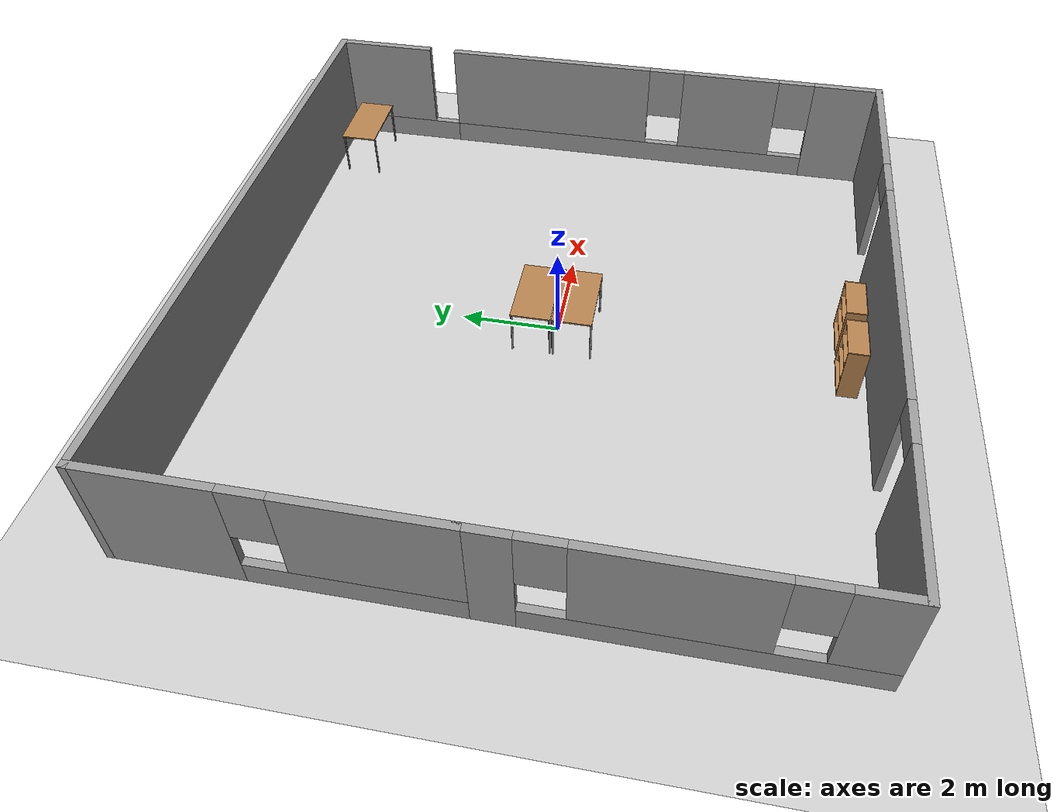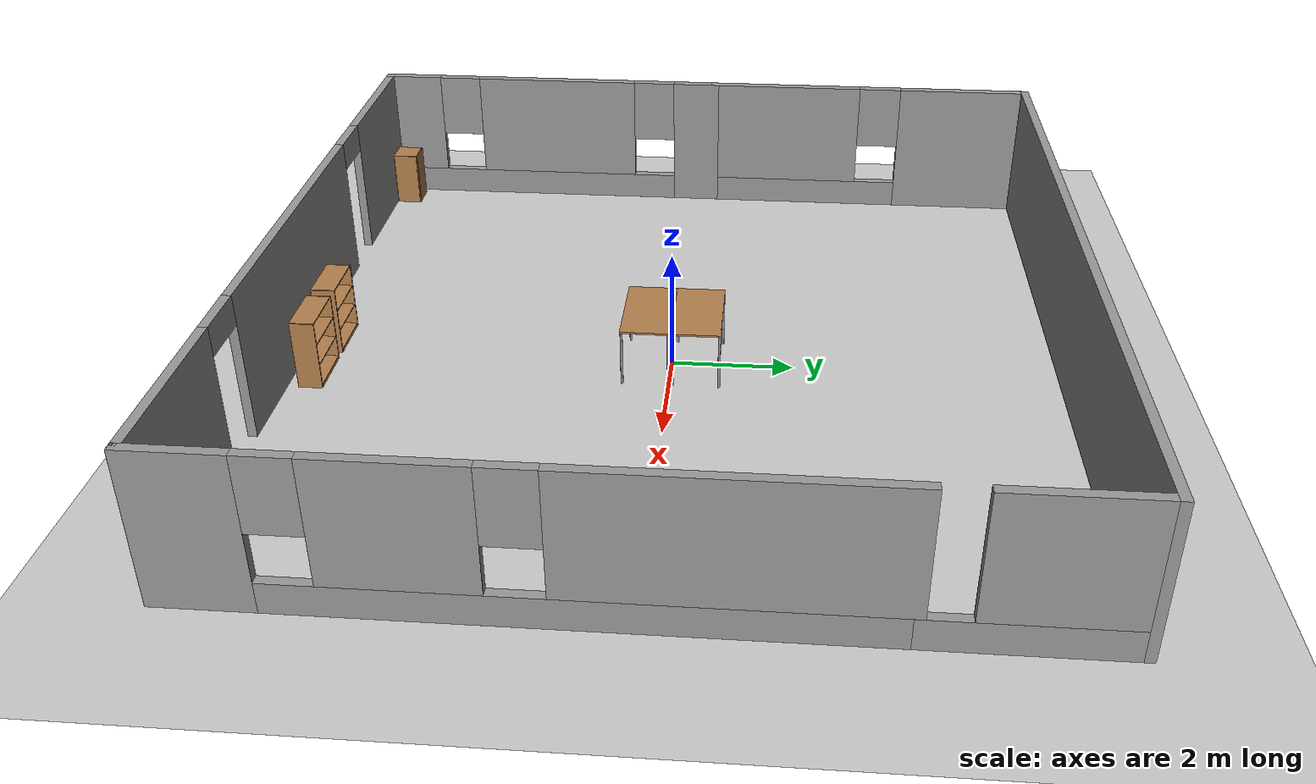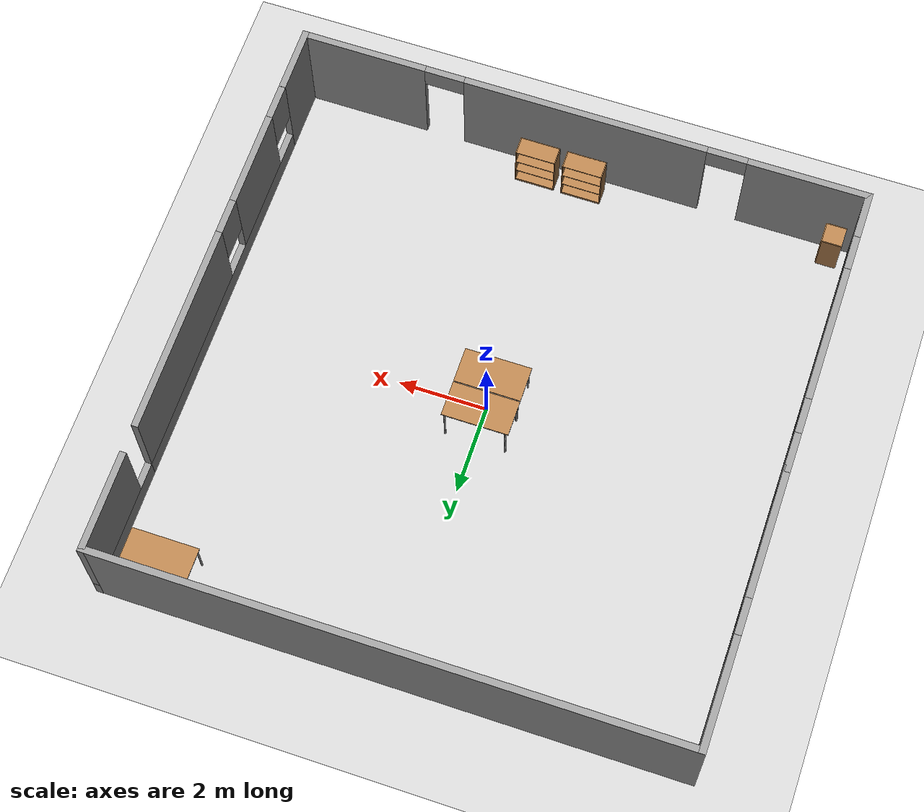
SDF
<sdf version="1.6">
 <world name="default">
  <light name="sun" type="directional">
   <pose>0 0 10 0 -0 0</pose>
   <diffuse>0.8 0.8 0.8 1</diffuse>
   <specular>0.2 0.2 0.2 1</specular>
   <attenuation>
    <range>1000</range>
    <constant>0.9</constant>
    <linear>0.01</linear>
    <quadratic>0.001</quadratic>
   </attenuation>
   <direction>-0.5 0.1 -0.9</direction>
  </light>
  <model name="ground_plane">
   <static>1</static>
   <link name="link">
    <collision name="collision">
     <geometry><plane><normal>0 0 1</normal><size>100 100</size></plane></geometry>
     <surface>
      <contact><collide_bitmask>65535</collide_bitmask></contact>
      <friction><ode><mu>100</mu><mu2>50</mu2></ode></friction>
     </surface>
    </collision>
    <visual name="visual">
     <cast_shadows>0</cast_shadows>
     <geometry><plane><normal>0 0 1</normal><size>100 100</size></plane></geometry>
     <material>
      <script><uri>file://media/materials/scripts/gazebo.material</uri><name>Gazebo/Grey</name></script>
     </material>
    </visual>
   </link>
  </model>
  <gravity>0 0 -9.8</gravity>
  <magnetic_field>6e-06 2.3e-05 -4.2e-05</magnetic_field>
  <atmosphere type="adiabatic"/>
  <physics name="default_physics" default="0" type="ode">
   <max_step_size>0.001</max_step_size>
   <real_time_factor>1</real_time_factor>
   <real_time_update_rate>1000</real_time_update_rate>
  </physics>
  <scene><ambient>0.4 0.4 0.4 1</ambient><background>0.7 0.7 0.7 1</background><shadows>1</shadows></scene>
  <audio><device>default</device></audio>
  <spherical_coordinates>
   <surface_model>EARTH_WGS84</surface_model>
   <latitude_deg>0</latitude_deg>
   <longitude_deg>0</longitude_deg>
   <elevation>0</elevation>
   <heading_deg>0</heading_deg>
  </spherical_coordinates>
  <model name="Smart_factory">
   <pose>-0.09031 0.07729 0 0 -0 0</pose>
   <link name="Wall_12">
    <pose>6.425 -1.425 0 0 -0 1.5708</pose>
    <visual name="Wall_12_Visual_0">
     <pose>-4.24561 0 1.25 0 -0 0</pose>
     <geometry><box><size>1.50879 0.15 2.5</size></box></geometry>
     <material>
      <script><uri>file://media/materials/scripts/gazebo.material</uri><name>Gazebo/Grey</name></script>
      <ambient>1 1 1 1</ambient>
     </material>
     <meta><layer>0</layer></meta>
    </visual>
    <collision name="Wall_12_Collision_0">
     <geometry><box><size>1.50879 0.15 2.5</size></box></geometry>
     <pose>-4.24561 0 1.25 0 -0 0</pose>
    </collision>
    <visual name="Wall_12_Visual_1">
     <pose>0.754395 0 0.25 0 -0 0</pose>
     <geometry><box><size>8.49121 0.15 0.5</size></box></geometry>
     <material>
      <script><uri>file://media/materials/scripts/gazebo.material</uri><name>Gazebo/Grey</name></script>
      <ambient>1 1 1 1</ambient>
     </material>
     <meta><layer>0</layer></meta>
    </visual>
    <collision name="Wall_12_Collision_1">
     <geometry><box><size>8.49121 0.15 0.5</size></box></geometry>
     <pose>0.754395 0 0.25 0 -0 0</pose>
    </collision>
    <visual name="Wall_12_Visual_2">
     <pose>-1.60281 0 1.5 0 -0 0</pose>
     <geometry><box><size>2.17681 0.15 2</size></box></geometry>
     <material>
      <script><uri>file://media/materials/scripts/gazebo.material</uri><name>Gazebo/Grey</name></script>
      <ambient>1 1 1 1</ambient>
     </material>
     <meta><layer>0</layer></meta>
    </visual>
    <collision name="Wall_12_Collision_2">
     <geometry><box><size>2.17681 0.15 2</size></box></geometry>
     <pose>-1.60281 0 1.5 0 -0 0</pose>
    </collision>
    <visual name="Wall_12_Visual_3">
     <pose>2.6428 0 1.5 0 -0 0</pose>
     <geometry><box><size>4.7144 0.15 2</size></box></geometry>
     <material>
      <script><uri>file://media/materials/scripts/gazebo.material</uri><name>Gazebo/Grey</name></script>
      <ambient>1 1 1 1</ambient>
     </material>
     <meta><layer>0</layer></meta>
    </visual>
    <collision name="Wall_12_Collision_3">
     <geometry><box><size>4.7144 0.15 2</size></box></geometry>
     <pose>2.6428 0 1.5 0 -0 0</pose>
    </collision>
    <visual name="Wall_12_Visual_4">
     <pose>-3.09121 0 1.9 0 -0 0</pose>
     <geometry><box><size>0.8 0.15 1.2</size></box></geometry>
     <material>
      <script><uri>file://media/materials/scripts/gazebo.material</uri><name>Gazebo/Grey</name></script>
      <ambient>1 1 1 1</ambient>
     </material>
     <meta><layer>0</layer></meta>
    </visual>
    <collision name="Wall_12_Collision_4">
     <geometry><box><size>0.8 0.15 1.2</size></box></geometry>
     <pose>-3.09121 0 1.9 0 -0 0</pose>
    </collision>
    <visual name="Wall_12_Visual_5">
     <pose>-0.114401 0 1.9 0 -0 0</pose>
     <geometry><box><size>0.8 0.15 1.2</size></box></geometry>
     <material>
      <script><uri>file://media/materials/scripts/gazebo.material</uri><name>Gazebo/Grey</name></script>
      <ambient>1 1 1 1</ambient>
     </material>
     <meta><layer>0</layer></meta>
    </visual>
    <collision name="Wall_12_Collision_5">
     <geometry><box><size>0.8 0.15 1.2</size></box></geometry>
     <pose>-0.114401 0 1.9 0 -0 0</pose>
    </collision>
   </link>
   <link name="Wall_14">
    <pose>6.425 4.925 0 0 -0 1.5708</pose>
    <visual name="Wall_14_Visual_0">
     <pose>0 0 0.25 0 -0 0</pose>
     <geometry><box><size>3 0.15 0.5</size></box></geometry>
     <material>
      <script><uri>file://media/materials/scripts/gazebo.material</uri><name>Gazebo/Grey</name></script>
      <ambient>1 1 1 1</ambient>
     </material>
     <meta><layer>0</layer></meta>
    </visual>
    <collision name="Wall_14_Collision_0">
     <geometry><box><size>3 0.15 0.5</size></box></geometry>
     <pose>0 0 0.25 0 -0 0</pose>
    </collision>
    <visual name="Wall_14_Visual_1">
     <pose>0.372791 0 1.5 0 -0 0</pose>
     <geometry><box><size>2.25442 0.15 2</size></box></geometry>
     <material>
      <script><uri>file://media/materials/scripts/gazebo.material</uri><name>Gazebo/Grey</name></script>
      <ambient>1 1 1 1</ambient>
     </material>
     <meta><layer>0</layer></meta>
    </visual>
    <collision name="Wall_14_Collision_1">
     <geometry><box><size>2.25442 0.15 2</size></box></geometry>
     <pose>0.372791 0 1.5 0 -0 0</pose>
    </collision>
   </link>
   <link name="Wall_15">
    <collision name="Wall_15_Collision">
     <geometry><box><size>13 0.15 2.5</size></box></geometry>
     <pose>0 0 1.25 0 -0 0</pose>
    </collision>
    <visual name="Wall_15_Visual">
     <pose>0 0 1.25 0 -0 0</pose>
     <geometry><box><size>13 0.15 2.5</size></box></geometry>
     <material>
      <script><uri>file://media/materials/scripts/gazebo.material</uri><name>Gazebo/Grey</name></script>
      <ambient>1 1 1 1</ambient>
     </material>
     <meta><layer>0</layer></meta>
    </visual>
    <pose>-0 6.35 0 0 -0 3.14159</pose>
   </link>
   <link name="Wall_16">
    <pose>-6.425 3.3 0 0 -0 -1.5708</pose>
    <visual name="Wall_16_Visual_0">
     <pose>-1.87711 0 1.25 0 -0 0</pose>
     <geometry><box><size>2.49578 0.15 2.5</size></box></geometry>
     <material>
      <script><uri>file://media/materials/scripts/gazebo.material</uri><name>Gazebo/Grey</name></script>
      <ambient>1 1 1 1</ambient>
     </material>
     <meta><layer>0</layer></meta>
    </visual>
    <collision name="Wall_16_Collision_0">
     <geometry><box><size>2.49578 0.15 2.5</size></box></geometry>
     <pose>-1.87711 0 1.25 0 -0 0</pose>
    </collision>
    <visual name="Wall_16_Visual_1">
     <pose>1.24789 0 0.25 0 -0 0</pose>
     <geometry><box><size>3.75422 0.15 0.5</size></box></geometry>
     <material>
      <script><uri>file://media/materials/scripts/gazebo.material</uri><name>Gazebo/Grey</name></script>
      <ambient>1 1 1 1</ambient>
     </material>
     <meta><layer>0</layer></meta>
    </visual>
    <collision name="Wall_16_Collision_1">
     <geometry><box><size>3.75422 0.15 0.5</size></box></geometry>
     <pose>1.24789 0 0.25 0 -0 0</pose>
    </collision>
    <visual name="Wall_16_Visual_2">
     <pose>1.64789 0 1.5 0 -0 0</pose>
     <geometry><box><size>2.95422 0.15 2</size></box></geometry>
     <material>
      <script><uri>file://media/materials/scripts/gazebo.material</uri><name>Gazebo/Grey</name></script>
      <ambient>1 1 1 1</ambient>
     </material>
     <meta><layer>0</layer></meta>
    </visual>
    <collision name="Wall_16_Collision_2">
     <geometry><box><size>2.95422 0.15 2</size></box></geometry>
     <pose>1.64789 0 1.5 0 -0 0</pose>
    </collision>
    <visual name="Wall_16_Visual_3">
     <pose>-0.229219 0 1.9 0 -0 0</pose>
     <geometry><box><size>0.8 0.15 1.2</size></box></geometry>
     <material>
      <script><uri>file://media/materials/scripts/gazebo.material</uri><name>Gazebo/Grey</name></script>
      <ambient>1 1 1 1</ambient>
     </material>
     <meta><layer>0</layer></meta>
    </visual>
    <collision name="Wall_16_Collision_3">
     <geometry><box><size>0.8 0.15 1.2</size></box></geometry>
     <pose>-0.229219 0 1.9 0 -0 0</pose>
    </collision>
   </link>
   <link name="Wall_17">
    <pose>-6.425 -3.05 0 0 -0 -1.5708</pose>
    <visual name="Wall_17_Visual_0">
     <pose>-2.92439 0 1.25 0 -0 0</pose>
     <geometry><box><size>0.901221 0.15 2.5</size></box></geometry>
     <material>
      <script><uri>file://media/materials/scripts/gazebo.material</uri><name>Gazebo/Grey</name></script>
      <ambient>1 1 1 1</ambient>
     </material>
     <meta><layer>0</layer></meta>
    </visual>
    <collision name="Wall_17_Collision_0">
     <geometry><box><size>0.901221 0.15 2.5</size></box></geometry>
     <pose>-2.92439 0 1.25 0 -0 0</pose>
    </collision>
    <visual name="Wall_17_Visual_1">
     <pose>0.45061 0 0.25 0 -0 0</pose>
     <geometry><box><size>5.84878 0.15 0.5</size></box></geometry>
     <material>
      <script><uri>file://media/materials/scripts/gazebo.material</uri><name>Gazebo/Grey</name></script>
      <ambient>1 1 1 1</ambient>
     </material>
     <meta><layer>0</layer></meta>
    </visual>
    <collision name="Wall_17_Collision_1">
     <geometry><box><size>5.84878 0.15 0.5</size></box></geometry>
     <pose>0.45061 0 0.25 0 -0 0</pose>
    </collision>
    <visual name="Wall_17_Visual_2">
     <pose>-0.102649 0 1.5 0 -0 0</pose>
     <geometry><box><size>3.14226 0.15 2</size></box></geometry>
     <material>
      <script><uri>file://media/materials/scripts/gazebo.material</uri><name>Gazebo/Grey</name></script>
      <ambient>1 1 1 1</ambient>
     </material>
     <meta><layer>0</layer></meta>
    </visual>
    <collision name="Wall_17_Collision_2">
     <geometry><box><size>3.14226 0.15 2</size></box></geometry>
     <pose>-0.102649 0 1.5 0 -0 0</pose>
    </collision>
    <visual name="Wall_17_Visual_3">
     <pose>2.82174 0 1.5 0 -0 0</pose>
     <geometry><box><size>1.10652 0.15 2</size></box></geometry>
     <material>
      <script><uri>file://media/materials/scripts/gazebo.material</uri><name>Gazebo/Grey</name></script>
      <ambient>1 1 1 1</ambient>
     </material>
     <meta><layer>0</layer></meta>
    </visual>
    <collision name="Wall_17_Collision_3">
     <geometry><box><size>1.10652 0.15 2</size></box></geometry>
     <pose>2.82174 0 1.5 0 -0 0</pose>
    </collision>
    <visual name="Wall_17_Visual_4">
     <pose>-2.07378 0 1.9 0 -0 0</pose>
     <geometry><box><size>0.8 0.15 1.2</size></box></geometry>
     <material>
      <script><uri>file://media/materials/scripts/gazebo.material</uri><name>Gazebo/Grey</name></script>
      <ambient>1 1 1 1</ambient>
     </material>
     <meta><layer>0</layer></meta>
    </visual>
    <collision name="Wall_17_Collision_4">
     <geometry><box><size>0.8 0.15 1.2</size></box></geometry>
     <pose>-2.07378 0 1.9 0 -0 0</pose>
    </collision>
    <visual name="Wall_17_Visual_5">
     <pose>1.86848 0 1.9 0 -0 0</pose>
     <geometry><box><size>0.8 0.15 1.2</size></box></geometry>
     <material>
      <script><uri>file://media/materials/scripts/gazebo.material</uri><name>Gazebo/Grey</name></script>
      <ambient>1 1 1 1</ambient>
     </material>
     <meta><layer>0</layer></meta>
    </visual>
    <collision name="Wall_17_Collision_5">
     <geometry><box><size>0.8 0.15 1.2</size></box></geometry>
     <pose>1.86848 0 1.9 0 -0 0</pose>
    </collision>
   </link>
   <link name="Wall_9">
    <pose>-0 -6.35 0 0 -0 0</pose>
    <visual name="Wall_9_Visual_0">
     <pose>-5.117 0 1.25 0 -0 0</pose>
     <geometry><box><size>2.76599 0.15 2.5</size></box></geometry>
     <material>
      <script><uri>file://media/materials/scripts/gazebo.material</uri><name>Gazebo/Grey</name></script>
      <ambient>1 1 1 1</ambient>
     </material>
     <meta><layer>0</layer></meta>
    </visual>
    <collision name="Wall_9_Collision_0">
     <geometry><box><size>2.76599 0.15 2.5</size></box></geometry>
     <pose>-5.117 0 1.25 0 -0 0</pose>
    </collision>
    <visual name="Wall_9_Visual_1">
     <pose>-0.065837 0 1.25 0 -0 0</pose>
     <geometry><box><size>5.53634 0.15 2.5</size></box></geometry>
     <material>
      <script><uri>file://media/materials/scripts/gazebo.material</uri><name>Gazebo/Grey</name></script>
      <ambient>1 1 1 1</ambient>
     </material>
     <meta><layer>0</layer></meta>
    </visual>
    <collision name="Wall_9_Collision_1">
     <geometry><box><size>5.53634 0.15 2.5</size></box></geometry>
     <pose>-0.065837 0 1.25 0 -0 0</pose>
    </collision>
    <visual name="Wall_9_Visual_2">
     <pose>5.05117 0 1.25 0 -0 0</pose>
     <geometry><box><size>2.89767 0.15 2.5</size></box></geometry>
     <material>
      <script><uri>file://media/materials/scripts/gazebo.material</uri><name>Gazebo/Grey</name></script>
      <ambient>1 1 1 1</ambient>
     </material>
     <meta><layer>0</layer></meta>
    </visual>
    <collision name="Wall_9_Collision_2">
     <geometry><box><size>2.89767 0.15 2.5</size></box></geometry>
     <pose>5.05117 0 1.25 0 -0 0</pose>
    </collision>
    <visual name="Wall_9_Visual_3">
     <pose>-3.28401 0 2.25 0 -0 0</pose>
     <geometry><box><size>0.9 0.15 0.5</size></box></geometry>
     <material>
      <script><uri>file://media/materials/scripts/gazebo.material</uri><name>Gazebo/Grey</name></script>
      <ambient>1 1 1 1</ambient>
     </material>
     <meta><layer>0</layer></meta>
    </visual>
    <collision name="Wall_9_Collision_3">
     <geometry><box><size>0.9 0.15 0.5</size></box></geometry>
     <pose>-3.28401 0 2.25 0 -0 0</pose>
    </collision>
    <visual name="Wall_9_Visual_4">
     <pose>3.15233 0 2.25 0 -0 0</pose>
     <geometry><box><size>0.9 0.15 0.5</size></box></geometry>
     <material>
      <script><uri>file://media/materials/scripts/gazebo.material</uri><name>Gazebo/Grey</name></script>
      <ambient>1 1 1 1</ambient>
     </material>
     <meta><layer>0</layer></meta>
    </visual>
    <collision name="Wall_9_Collision_4">
     <geometry><box><size>0.9 0.15 0.5</size></box></geometry>
     <pose>3.15233 0 2.25 0 -0 0</pose>
    </collision>
   </link>
   <static>1</static>
  </model>
  <model name="table">
   <static>1</static>
   <link name="link">
    <collision name="surface">
     <pose>0 0 1 0 -0 0</pose>
     <geometry><box><size>1.5 0.8 0.03</size></box></geometry>
     <surface><friction><ode><mu>0.6</mu><mu2>0.6</mu2></ode></friction></surface>
    </collision>
    <visual name="visual1">
     <pose>0 0 1 0 -0 0</pose>
     <geometry><box><size>1.5 0.8 0.03</size></box></geometry>
     <material>
      <script><uri>file://media/materials/scripts/gazebo.material</uri><name>Gazebo/Wood</name></script>
     </material>
    </visual>
    <collision name="front_left_leg">
     <pose>0.68 0.38 0.5 0 -0 0</pose>
     <geometry><cylinder><radius>0.02</radius><length>1</length></cylinder></geometry>
    </collision>
    <visual name="front_left_leg">
     <pose>0.68 0.38 0.5 0 -0 0</pose>
     <geometry><cylinder><radius>0.02</radius><length>1</length></cylinder></geometry>
     <material>
      <script><uri>file://media/materials/scripts/gazebo.material</uri><name>Gazebo/Grey</name></script>
     </material>
    </visual>
    <collision name="front_right_leg">
     <pose>0.68 -0.38 0.5 0 -0 0</pose>
     <geometry><cylinder><radius>0.02</radius><length>1</length></cylinder></geometry>
    </collision>
    <visual name="front_right_leg">
     <pose>0.68 -0.38 0.5 0 -0 0</pose>
     <geometry><cylinder><radius>0.02</radius><length>1</length></cylinder></geometry>
     <material>
      <script><uri>file://media/materials/scripts/gazebo.material</uri><name>Gazebo/Grey</name></script>
     </material>
    </visual>
    <collision name="back_right_leg">
     <pose>-0.68 -0.38 0.5 0 -0 0</pose>
     <geometry><cylinder><radius>0.02</radius><length>1</length></cylinder></geometry>
    </collision>
    <visual name="back_right_leg">
     <pose>-0.68 -0.38 0.5 0 -0 0</pose>
     <geometry><cylinder><radius>0.02</radius><length>1</length></cylinder></geometry>
     <material>
      <script><uri>file://media/materials/scripts/gazebo.material</uri><name>Gazebo/Grey</name></script>
     </material>
    </visual>
    <collision name="back_left_leg">
     <pose>-0.68 0.38 0.5 0 -0 0</pose>
     <geometry><cylinder><radius>0.02</radius><length>1</length></cylinder></geometry>
    </collision>
    <visual name="back_left_leg">
     <pose>-0.68 0.38 0.5 0 -0 0</pose>
     <geometry><cylinder><radius>0.02</radius><length>1</length></cylinder></geometry>
     <material>
      <script><uri>file://media/materials/scripts/gazebo.material</uri><name>Gazebo/Grey</name></script>
     </material>
    </visual>
   </link>
   <pose>-0.008063 0.427367 0 0 -0 0</pose>
  </model>
  <model name="table_0">
   <static>1</static>
   <link name="link">
    <collision name="surface">
     <pose>0 0 1 0 -0 0</pose>
     <geometry><box><size>1.5 0.8 0.03</size></box></geometry>
     <surface><friction><ode><mu>0.6</mu><mu2>0.6</mu2></ode></friction></surface>
    </collision>
    <visual name="visual1">
     <pose>0 0 1 0 -0 0</pose>
     <geometry><box><size>1.5 0.8 0.03</size></box></geometry>
     <material>
      <script><uri>file://media/materials/scripts/gazebo.material</uri><name>Gazebo/Wood</name></script>
     </material>
    </visual>
    <collision name="front_left_leg">
     <pose>0.68 0.38 0.5 0 -0 0</pose>
     <geometry><cylinder><radius>0.02</radius><length>1</length></cylinder></geometry>
    </collision>
    <visual name="front_left_leg">
     <pose>0.68 0.38 0.5 0 -0 0</pose>
     <geometry><cylinder><radius>0.02</radius><length>1</length></cylinder></geometry>
     <material>
      <script><uri>file://media/materials/scripts/gazebo.material</uri><name>Gazebo/Grey</name></script>
     </material>
    </visual>
    <collision name="front_right_leg">
     <pose>0.68 -0.38 0.5 0 -0 0</pose>
     <geometry><cylinder><radius>0.02</radius><length>1</length></cylinder></geometry>
    </collision>
    <visual name="front_right_leg">
     <pose>0.68 -0.38 0.5 0 -0 0</pose>
     <geometry><cylinder><radius>0.02</radius><length>1</length></cylinder></geometry>
     <material>
      <script><uri>file://media/materials/scripts/gazebo.material</uri><name>Gazebo/Grey</name></script>
     </material>
    </visual>
    <collision name="back_right_leg">
     <pose>-0.68 -0.38 0.5 0 -0 0</pose>
     <geometry><cylinder><radius>0.02</radius><length>1</length></cylinder></geometry>
    </collision>
    <visual name="back_right_leg">
     <pose>-0.68 -0.38 0.5 0 -0 0</pose>
     <geometry><cylinder><radius>0.02</radius><length>1</length></cylinder></geometry>
     <material>
      <script><uri>file://media/materials/scripts/gazebo.material</uri><name>Gazebo/Grey</name></script>
     </material>
    </visual>
    <collision name="back_left_leg">
     <pose>-0.68 0.38 0.5 0 -0 0</pose>
     <geometry><cylinder><radius>0.02</radius><length>1</length></cylinder></geometry>
    </collision>
    <visual name="back_left_leg">
     <pose>-0.68 0.38 0.5 0 -0 0</pose>
     <geometry><cylinder><radius>0.02</radius><length>1</length></cylinder></geometry>
     <material>
      <script><uri>file://media/materials/scripts/gazebo.material</uri><name>Gazebo/Grey</name></script>
     </material>
    </visual>
   </link>
   <pose>-0.008063 -0.395113 0 0 -0 0</pose>
  </model>
  <model name="table_1">
   <static>1</static>
   <link name="link">
    <collision name="surface">
     <pose>0 0 1 0 -0 0</pose>
     <geometry><box><size>1.5 0.8 0.03</size></box></geometry>
     <surface><friction><ode><mu>0.6</mu><mu2>0.6</mu2></ode></friction></surface>
    </collision>
    <visual name="visual1">
     <pose>0 0 1 0 -0 0</pose>
     <geometry><box><size>1.5 0.8 0.03</size></box></geometry>
     <material>
      <script><uri>file://media/materials/scripts/gazebo.material</uri><name>Gazebo/Wood</name></script>
     </material>
    </visual>
    <collision name="front_left_leg">
     <pose>0.68 0.38 0.5 0 -0 0</pose>
     <geometry><cylinder><radius>0.02</radius><length>1</length></cylinder></geometry>
    </collision>
    <visual name="front_left_leg">
     <pose>0.68 0.38 0.5 0 -0 0</pose>
     <geometry><cylinder><radius>0.02</radius><length>1</length></cylinder></geometry>
     <material>
      <script><uri>file://media/materials/scripts/gazebo.material</uri><name>Gazebo/Grey</name></script>
     </material>
    </visual>
    <collision name="front_right_leg">
     <pose>0.68 -0.38 0.5 0 -0 0</pose>
     <geometry><cylinder><radius>0.02</radius><length>1</length></cylinder></geometry>
    </collision>
    <visual name="front_right_leg">
     <pose>0.68 -0.38 0.5 0 -0 0</pose>
     <geometry><cylinder><radius>0.02</radius><length>1</length></cylinder></geometry>
     <material>
      <script><uri>file://media/materials/scripts/gazebo.material</uri><name>Gazebo/Grey</name></script>
     </material>
    </visual>
    <collision name="back_right_leg">
     <pose>-0.68 -0.38 0.5 0 -0 0</pose>
     <geometry><cylinder><radius>0.02</radius><length>1</length></cylinder></geometry>
    </collision>
    <visual name="back_right_leg">
     <pose>-0.68 -0.38 0.5 0 -0 0</pose>
     <geometry><cylinder><radius>0.02</radius><length>1</length></cylinder></geometry>
     <material>
      <script><uri>file://media/materials/scripts/gazebo.material</uri><name>Gazebo/Grey</name></script>
     </material>
    </visual>
    <collision name="back_left_leg">
     <pose>-0.68 0.38 0.5 0 -0 0</pose>
     <geometry><cylinder><radius>0.02</radius><length>1</length></cylinder></geometry>
    </collision>
    <visual name="back_left_leg">
     <pose>-0.68 0.38 0.5 0 -0 0</pose>
     <geometry><cylinder><radius>0.02</radius><length>1</length></cylinder></geometry>
     <material>
      <script><uri>file://media/materials/scripts/gazebo.material</uri><name>Gazebo/Grey</name></script>
     </material>
    </visual>
   </link>
   <pose>5.21711 5.65254 0 0 -0 0</pose>
  </model>
  <model name="cabinet">
   <static>1</static>
   <link name="cabinet_bottom_plate">
    <inertial>
     <pose>0 0 -1 0 -0 0</pose>
     <inertia><ixx>2.05</ixx><ixy>0</ixy><ixz>0</ixz><iyy>2.05</iyy><iyz>0</iyz><izz>2.05</izz></inertia>
     <mass>25</mass>
    </inertial>
    <collision name="cabinet_bottom_plate_geom">
     <pose>0 0 0.01 0 -0 0</pose>
     <geometry><box><size>0.45 0.45 0.02</size></box></geometry>
    </collision>
    <visual name="cabinet_bottom_plate_geom_visual">
     <pose>0 0 0.01 0 -0 0</pose>
     <geometry><box><size>0.45 0.45 0.02</size></box></geometry>
     <material>
      <script><uri>file://media/materials/scripts/gazebo.material</uri><name>Gazebo/Wood</name></script>
     </material>
    </visual>
    <collision name="cabinet_bottom_plate_geom_cabinet_back_plate">
     <pose>0.235 0 0.51 0 -0 0</pose>
     <geometry><box><size>0.02 0.45 1.02</size></box></geometry>
    </collision>
    <visual name="cabinet_bottom_plate_geom_cabinet_back_plate_visual">
     <pose>0.235 0 0.51 0 -0 0</pose>
     <geometry><box><size>0.02 0.45 1.02</size></box></geometry>
     <material>
      <script><uri>file://media/materials/scripts/gazebo.material</uri><name>Gazebo/Wood</name></script>
     </material>
    </visual>
    <collision name="cabinet_bottom_plate_geom_cabinet_left_plate">
     <pose>0 0.235 0.51 0 -0 0</pose>
     <geometry><box><size>0.45 0.02 1.02</size></box></geometry>
    </collision>
    <visual name="cabinet_bottom_plate_geom_cabinet_left_plate_visual">
     <pose>0 0.235 0.51 0 -0 0</pose>
     <geometry><box><size>0.45 0.02 1.02</size></box></geometry>
     <material>
      <script><uri>file://media/materials/scripts/gazebo.material</uri><name>Gazebo/Wood</name></script>
     </material>
    </visual>
    <collision name="cabinet_bottom_plate_geom_cabinet_middle_plate">
     <pose>0 0 0.51 0 -0 0</pose>
     <geometry><box><size>0.45 0.45 0.02</size></box></geometry>
    </collision>
    <visual name="cabinet_bottom_plate_geom_cabinet_middle_plate_visual">
     <pose>0 0 0.51 0 -0 0</pose>
     <geometry><box><size>0.45 0.45 0.02</size></box></geometry>
     <material>
      <script><uri>file://media/materials/scripts/gazebo.material</uri><name>Gazebo/Wood</name></script>
     </material>
    </visual>
    <collision name="cabinet_bottom_plate_geom_cabinet_right_plate">
     <pose>0 -0.235 0.51 0 -0 0</pose>
     <geometry><box><size>0.45 0.02 1.02</size></box></geometry>
    </collision>
    <visual name="cabinet_bottom_plate_geom_cabinet_right_plate_visual">
     <pose>0 -0.235 0.51 0 -0 0</pose>
     <geometry><box><size>0.45 0.02 1.02</size></box></geometry>
     <material>
      <script><uri>file://media/materials/scripts/gazebo.material</uri><name>Gazebo/Wood</name></script>
     </material>
    </visual>
    <collision name="cabinet_bottom_plate_geom_cabinet_top_plate">
     <pose>0 0 1.01 0 -0 0</pose>
     <geometry><box><size>0.45 0.45 0.02</size></box></geometry>
    </collision>
    <visual name="cabinet_bottom_plate_geom_cabinet_top_plate_visual">
     <pose>0 0 1.01 0 -0 0</pose>
     <geometry><box><size>0.45 0.45 0.02</size></box></geometry>
     <material>
      <script><uri>file://media/materials/scripts/gazebo.material</uri><name>Gazebo/Wood</name></script>
     </material>
    </visual>
   </link>
   <pose>-6.05516 -5.95906 0 0 -0 0</pose>
  </model>
  <model name="bookshelf">
   <static>1</static>
   <link name="link">
    <inertial><mass>1</mass></inertial>
    <collision name="back">
     <pose>0 0.005 0.6 0 -0 0</pose>
     <geometry><box><size>0.9 0.01 1.2</size></box></geometry>
    </collision>
    <visual name="visual1">
     <pose>0 0.005 0.6 0 -0 0</pose>
     <geometry><box><size>0.9 0.01 1.2</size></box></geometry>
     <material>
      <script><uri>file://media/materials/scripts/gazebo.material</uri><name>Gazebo/Wood</name></script>
     </material>
    </visual>
    <collision name="left_side">
     <pose>0.45 -0.195 0.6 0 -0 0</pose>
     <geometry><box><size>0.02 0.4 1.2</size></box></geometry>
    </collision>
    <visual name="visual2">
     <pose>0.45 -0.195 0.6 0 -0 0</pose>
     <geometry><box><size>0.02 0.4 1.2</size></box></geometry>
     <material>
      <script><uri>file://media/materials/scripts/gazebo.material</uri><name>Gazebo/Wood</name></script>
     </material>
    </visual>
    <collision name="right_side">
     <pose>-0.45 -0.195 0.6 0 -0 0</pose>
     <geometry><box><size>0.02 0.4 1.2</size></box></geometry>
    </collision>
    <visual name="visual3">
     <pose>-0.45 -0.195 0.6 0 -0 0</pose>
     <geometry><box><size>0.02 0.4 1.2</size></box></geometry>
     <material>
      <script><uri>file://media/materials/scripts/gazebo.material</uri><name>Gazebo/Wood</name></script>
     </material>
    </visual>
    <collision name="bottom">
     <pose>0 -0.195 0.03 0 -0 0</pose>
     <geometry><box><size>0.88 0.4 0.06</size></box></geometry>
    </collision>
    <visual name="visual4">
     <pose>0 -0.195 0.03 0 -0 0</pose>
     <geometry><box><size>0.88 0.4 0.06</size></box></geometry>
     <material>
      <script><uri>file://media/materials/scripts/gazebo.material</uri><name>Gazebo/Wood</name></script>
     </material>
    </visual>
    <collision name="top">
     <pose>0 -0.195 1.19 0 -0 0</pose>
     <geometry><box><size>0.88 0.4 0.02</size></box></geometry>
    </collision>
    <visual name="visual5">
     <pose>0 -0.195 1.19 0 -0 0</pose>
     <geometry><box><size>0.88 0.4 0.02</size></box></geometry>
     <material>
      <script><uri>file://media/materials/scripts/gazebo.material</uri><name>Gazebo/Wood</name></script>
     </material>
    </visual>
    <collision name="low_shelf">
     <pose>0 -0.195 0.43 0 -0 0</pose>
     <geometry><box><size>0.88 0.4 0.02</size></box></geometry>
    </collision>
    <visual name="visual6">
     <pose>0 -0.195 0.43 0 -0 0</pose>
     <geometry><box><size>0.88 0.4 0.02</size></box></geometry>
     <material>
      <script><uri>file://media/materials/scripts/gazebo.material</uri><name>Gazebo/Wood</name></script>
     </material>
    </visual>
    <collision name="high_shelf">
     <pose>0 -0.195 0.8 0 -0 0</pose>
     <geometry><box><size>0.88 0.4 0.02</size></box></geometry>
    </collision>
    <visual name="visual7">
     <pose>0 -0.195 0.8 0 -0 0</pose>
     <geometry><box><size>0.88 0.4 0.02</size></box></geometry>
     <material>
      <script><uri>file://media/materials/scripts/gazebo.material</uri><name>Gazebo/Wood</name></script>
     </material>
    </visual>
   </link>
   <pose>-0.346078 -5.99969 0 0 -0 3.14159</pose>
  </model>
  <model name="bookshelf_0">
   <static>1</static>
   <link name="link">
    <inertial><mass>1</mass></inertial>
    <collision name="back">
     <pose>0 0.005 0.6 0 -0 0</pose>
     <geometry><box><size>0.9 0.01 1.2</size></box></geometry>
    </collision>
    <visual name="visual1">
     <pose>0 0.005 0.6 0 -0 0</pose>
     <geometry><box><size>0.9 0.01 1.2</size></box></geometry>
     <material>
      <script><uri>file://media/materials/scripts/gazebo.material</uri><name>Gazebo/Wood</name></script>
     </material>
    </visual>
    <collision name="left_side">
     <pose>0.45 -0.195 0.6 0 -0 0</pose>
     <geometry><box><size>0.02 0.4 1.2</size></box></geometry>
    </collision>
    <visual name="visual2">
     <pose>0.45 -0.195 0.6 0 -0 0</pose>
     <geometry><box><size>0.02 0.4 1.2</size></box></geometry>
     <material>
      <script><uri>file://media/materials/scripts/gazebo.material</uri><name>Gazebo/Wood</name></script>
     </material>
    </visual>
    <collision name="right_side">
     <pose>-0.45 -0.195 0.6 0 -0 0</pose>
     <geometry><box><size>0.02 0.4 1.2</size></box></geometry>
    </collision>
    <visual name="visual3">
     <pose>-0.45 -0.195 0.6 0 -0 0</pose>
     <geometry><box><size>0.02 0.4 1.2</size></box></geometry>
     <material>
      <script><uri>file://media/materials/scripts/gazebo.material</uri><name>Gazebo/Wood</name></script>
     </material>
    </visual>
    <collision name="bottom">
     <pose>0 -0.195 0.03 0 -0 0</pose>
     <geometry><box><size>0.88 0.4 0.06</size></box></geometry>
    </collision>
    <visual name="visual4">
     <pose>0 -0.195 0.03 0 -0 0</pose>
     <geometry><box><size>0.88 0.4 0.06</size></box></geometry>
     <material>
      <script><uri>file://media/materials/scripts/gazebo.material</uri><name>Gazebo/Wood</name></script>
     </material>
    </visual>
    <collision name="top">
     <pose>0 -0.195 1.19 0 -0 0</pose>
     <geometry><box><size>0.88 0.4 0.02</size></box></geometry>
    </collision>
    <visual name="visual5">
     <pose>0 -0.195 1.19 0 -0 0</pose>
     <geometry><box><size>0.88 0.4 0.02</size></box></geometry>
     <material>
      <script><uri>file://media/materials/scripts/gazebo.material</uri><name>Gazebo/Wood</name></script>
     </material>
    </visual>
    <collision name="low_shelf">
     <pose>0 -0.195 0.43 0 -0 0</pose>
     <geometry><box><size>0.88 0.4 0.02</size></box></geometry>
    </collision>
    <visual name="visual6">
     <pose>0 -0.195 0.43 0 -0 0</pose>
     <geometry><box><size>0.88 0.4 0.02</size></box></geometry>
     <material>
      <script><uri>file://media/materials/scripts/gazebo.material</uri><name>Gazebo/Wood</name></script>
     </material>
    </visual>
    <collision name="high_shelf">
     <pose>0 -0.195 0.8 0 -0 0</pose>
     <geometry><box><size>0.88 0.4 0.02</size></box></geometry>
    </collision>
    <visual name="visual7">
     <pose>0 -0.195 0.8 0 -0 0</pose>
     <geometry><box><size>0.88 0.4 0.02</size></box></geometry>
     <material>
      <script><uri>file://media/materials/scripts/gazebo.material</uri><name>Gazebo/Wood</name></script>
     </material>
    </visual>
   </link>
   <pose>0.743572 -6.00833 0 0 -0 3.14159</pose>
  </model>
 </world>
</sdf>
